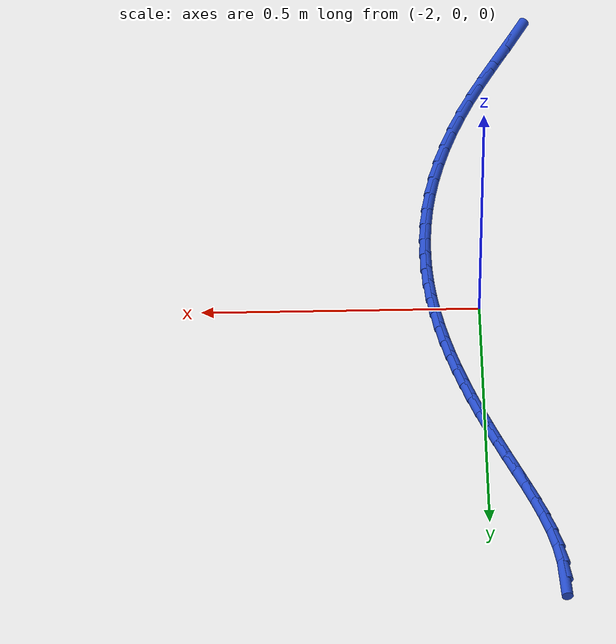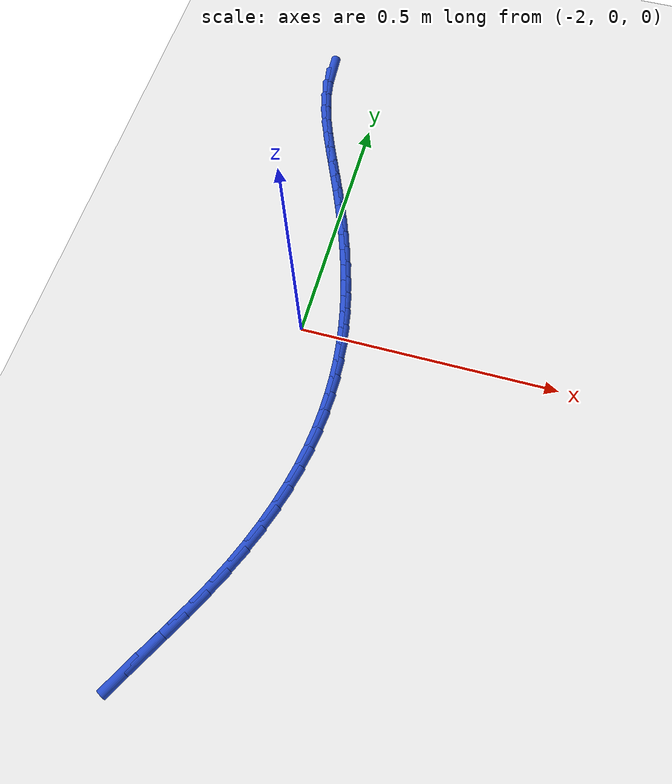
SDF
<sdf version="1.6">
 <world name="default">
  <model name="ground_plane">
   <static>1</static>
   <link name="link">
    <collision name="collision">
     <geometry><plane><normal>0 0 1</normal><size>100 100</size></plane></geometry>
     <surface><friction><ode><mu>100</mu><mu2>50</mu2></ode></friction></surface>
    </collision>
    <visual name="visual">
     <cast_shadows>0</cast_shadows>
     <geometry><plane><normal>0 0 1</normal><size>100 100</size></plane></geometry>
     <material>
      <script><uri>file://media/materials/scripts/gazebo.material</uri><name>Gazebo/WhiteGlow</name></script>
     </material>
    </visual>
   </link>
  </model>
  <model name="line">
   <link name="link_89">
    <pose>-2.12395162584496 0.6381175302411104 0.01 0 1.57 -1.5034631519216013</pose>
    <collision name="collision">
     <geometry><cylinder><radius>0.01</radius><length>0.08</length></cylinder></geometry>
    </collision>
    <visual name="visual">
     <material>
      <script><name>Gazebo/Blue</name><uri>file://media/materials/scripts/gazebo.material</uri></script>
     </material>
     <geometry><cylinder><radius>0.01</radius><length>0.08</length></cylinder></geometry>
    </visual>
   </link>
   <link name="link_90">
    <pose>-2.121588429755306 0.6030735325533041 0.01 0 1.57 -1.399343400542922</pose>
    <collision name="collision">
     <geometry><cylinder><radius>0.01</radius><length>0.08</length></cylinder></geometry>
    </collision>
    <visual name="visual">
     <material>
      <script><name>Gazebo/Blue</name><uri>file://media/materials/scripts/gazebo.material</uri></script>
     </material>
     <geometry><cylinder><radius>0.01</radius><length>0.08</length></cylinder></geometry>
    </visual>
   </link>
   <link name="link_91">
    <pose>-2.1155185097320017 0.5680182790213089 0.01 0 1.57 -1.3149138429564826</pose>
    <collision name="collision">
     <geometry><cylinder><radius>0.01</radius><length>0.08</length></cylinder></geometry>
    </collision>
    <visual name="visual">
     <material>
      <script><name>Gazebo/Blue</name><uri>file://media/materials/scripts/gazebo.material</uri></script>
     </material>
     <geometry><cylinder><radius>0.01</radius><length>0.08</length></cylinder></geometry>
    </visual>
   </link>
   <link name="link_92">
    <pose>-2.106352872381465 0.5329837744342042 0.01 0 1.57 -1.249309132578316</pose>
    <collision name="collision">
     <geometry><cylinder><radius>0.01</radius><length>0.08</length></cylinder></geometry>
    </collision>
    <visual name="visual">
     <material>
      <script><name>Gazebo/Blue</name><uri>file://media/materials/scripts/gazebo.material</uri></script>
     </material>
     <geometry><cylinder><radius>0.01</radius><length>0.08</length></cylinder></geometry>
    </visual>
   </link>
   <link name="link_93">
    <pose>-2.094702524310115 0.49800202358106804 0.01 0 1.57 -1.2010754723055455</pose>
    <collision name="collision">
     <geometry><cylinder><radius>0.01</radius><length>0.08</length></cylinder></geometry>
    </collision>
    <visual name="visual">
     <material>
      <script><name>Gazebo/Blue</name><uri>file://media/materials/scripts/gazebo.material</uri></script>
     </material>
     <geometry><cylinder><radius>0.01</radius><length>0.08</length></cylinder></geometry>
    </visual>
   </link>
   <link name="link_94">
    <pose>-2.0811784721243733 0.46310503125098035 0.01 0 1.57 -1.168800209695618</pose>
    <collision name="collision">
     <geometry><cylinder><radius>0.01</radius><length>0.08</length></cylinder></geometry>
    </collision>
    <visual name="visual">
     <material>
      <script><name>Gazebo/Blue</name><uri>file://media/materials/scripts/gazebo.material</uri></script>
     </material>
     <geometry><cylinder><radius>0.01</radius><length>0.08</length></cylinder></geometry>
    </visual>
   </link>
   <link name="link_95">
    <pose>-2.0663917224306574 0.42832480223301883 0.01 0 1.57 -1.1514469838567807</pose>
    <collision name="collision">
     <geometry><cylinder><radius>0.01</radius><length>0.08</length></cylinder></geometry>
    </collision>
    <visual name="visual">
     <material>
      <script><name>Gazebo/Blue</name><uri>file://media/materials/scripts/gazebo.material</uri></script>
     </material>
     <geometry><cylinder><radius>0.01</radius><length>0.08</length></cylinder></geometry>
    </visual>
   </link>
   <link name="link_96">
    <pose>-2.0509532818353877 0.39369334131626343 0.01 0 1.57 -1.1485050526131664</pose>
    <collision name="collision">
     <geometry><cylinder><radius>0.01</radius><length>0.08</length></cylinder></geometry>
    </collision>
    <visual name="visual">
     <material>
      <script><name>Gazebo/Blue</name><uri>file://media/materials/scripts/gazebo.material</uri></script>
     </material>
     <geometry><cylinder><radius>0.01</radius><length>0.08</length></cylinder></geometry>
    </visual>
   </link>
   <link name="link_97">
    <pose>-2.035473748796037 0.35924259434498607 0.01 0 1.57 -1.1569122805504914</pose>
    <collision name="collision">
     <geometry><cylinder><radius>0.01</radius><length>0.08</length></cylinder></geometry>
    </collision>
    <visual name="visual">
     <material>
      <script><name>Gazebo/Blue</name><uri>file://media/materials/scripts/gazebo.material</uri></script>
     </material>
     <geometry><cylinder><radius>0.01</radius><length>0.08</length></cylinder></geometry>
    </visual>
   </link>
   <link name="link_98">
    <pose>-2.0204256792742665 0.3249845710880191 0.01 0 1.57 -1.169201766372938</pose>
    <collision name="collision">
     <geometry><cylinder><radius>0.01</radius><length>0.08</length></cylinder></geometry>
    </collision>
    <visual name="visual">
     <material>
      <script><name>Gazebo/Blue</name><uri>file://media/materials/scripts/gazebo.material</uri></script>
     </material>
     <geometry><cylinder><radius>0.01</radius><length>0.08</length></cylinder></geometry>
    </visual>
   </link>
   <link name="link_99">
    <pose>-2.005943384665935 0.2908824320874324 0.01 0 1.57 -1.1842964422747582</pose>
    <collision name="collision">
     <geometry><cylinder><radius>0.01</radius><length>0.08</length></cylinder></geometry>
    </collision>
    <visual name="visual">
     <material>
      <script><name>Gazebo/Blue</name><uri>file://media/materials/scripts/gazebo.material</uri></script>
     </material>
     <geometry><cylinder><radius>0.01</radius><length>0.08</length></cylinder></geometry>
    </visual>
   </link>
   <link name="link_100">
    <pose>-1.9921103209625342 0.25689199335582885 0.01 0 1.57 -1.202259638124991</pose>
    <collision name="collision">
     <geometry><cylinder><radius>0.01</radius><length>0.08</length></cylinder></geometry>
    </collision>
    <visual name="visual">
     <material>
      <script><name>Gazebo/Blue</name><uri>file://media/materials/scripts/gazebo.material</uri></script>
     </material>
     <geometry><cylinder><radius>0.01</radius><length>0.08</length></cylinder></geometry>
    </visual>
   </link>
   <link name="link_101">
    <pose>-1.9790099441555586 0.22296907090581286 0.01 0 1.57 -1.2231432167341818</pose>
    <collision name="collision">
     <geometry><cylinder><radius>0.01</radius><length>0.08</length></cylinder></geometry>
    </collision>
    <visual name="visual">
     <material>
      <script><name>Gazebo/Blue</name><uri>file://media/materials/scripts/gazebo.material</uri></script>
     </material>
     <geometry><cylinder><radius>0.01</radius><length>0.08</length></cylinder></geometry>
    </visual>
   </link>
   <link name="link_102">
    <pose>-1.9667257102365028 0.18906948074998786 0.01 0 1.57 -1.2469823939323856</pose>
    <collision name="collision">
     <geometry><cylinder><radius>0.01</radius><length>0.08</length></cylinder></geometry>
    </collision>
    <visual name="visual">
     <material>
      <script><name>Gazebo/Blue</name><uri>file://media/materials/scripts/gazebo.material</uri></script>
     </material>
     <geometry><cylinder><radius>0.01</radius><length>0.08</length></cylinder></geometry>
    </visual>
   </link>
   <link name="link_103">
    <pose>-1.9553410751968594 0.1551490389009582 0.01 0 1.57 -1.27378961952184</pose>
    <collision name="collision">
     <geometry><cylinder><radius>0.01</radius><length>0.08</length></cylinder></geometry>
    </collision>
    <visual name="visual">
     <material>
      <script><name>Gazebo/Blue</name><uri>file://media/materials/scripts/gazebo.material</uri></script>
     </material>
     <geometry><cylinder><radius>0.01</radius><length>0.08</length></cylinder></geometry>
    </visual>
   </link>
   <link name="link_104">
    <pose>-1.944939495028122 0.12116356137132707 0.01 0 1.57 -1.3035476922176128</pose>
    <collision name="collision">
     <geometry><cylinder><radius>0.01</radius><length>0.08</length></cylinder></geometry>
    </collision>
    <visual name="visual">
     <material>
      <script><name>Gazebo/Blue</name><uri>file://media/materials/scripts/gazebo.material</uri></script>
     </material>
     <geometry><cylinder><radius>0.01</radius><length>0.08</length></cylinder></geometry>
    </visual>
   </link>
   <link name="link_105">
    <pose>-1.9356044257217846 0.08706886417369902 0.01 0 1.57 -1.336202446321169</pose>
    <collision name="collision">
     <geometry><cylinder><radius>0.01</radius><length>0.08</length></cylinder></geometry>
    </collision>
    <visual name="visual">
     <material>
      <script><name>Gazebo/Blue</name><uri>file://media/materials/scripts/gazebo.material</uri></script>
     </material>
     <geometry><cylinder><radius>0.01</radius><length>0.08</length></cylinder></geometry>
    </visual>
   </link>
   <link name="link_106">
    <pose>-1.9274193232693415 0.052820763320677144 0.01 0 1.57 -1.3716555442141474</pose>
    <collision name="collision">
     <geometry><cylinder><radius>0.01</radius><length>0.08</length></cylinder></geometry>
    </collision>
    <visual name="visual">
     <material>
      <script><name>Gazebo/Blue</name><uri>file://media/materials/scripts/gazebo.material</uri></script>
     </material>
     <geometry><cylinder><radius>0.01</radius><length>0.08</length></cylinder></geometry>
    </visual>
   </link>
   <link name="link_107">
    <pose>-1.9204676436622856 0.018375074824866024 0.01 0 1.57 -1.4097581113877269</pose>
    <collision name="collision">
     <geometry><cylinder><radius>0.01</radius><length>0.08</length></cylinder></geometry>
    </collision>
    <visual name="visual">
     <material>
      <script><name>Gazebo/Blue</name><uri>file://media/materials/scripts/gazebo.material</uri></script>
     </material>
     <geometry><cylinder><radius>0.01</radius><length>0.08</length></cylinder></geometry>
    </visual>
   </link>
   <link name="link_108">
    <pose>-1.9148328428921106 -0.01631238530113128 0.01 0 1.57 -1.450306115779859</pose>
    <collision name="collision">
     <geometry><cylinder><radius>0.01</radius><length>0.08</length></cylinder></geometry>
    </collision>
    <visual name="visual">
     <material>
      <script><name>Gazebo/Blue</name><uri>file://media/materials/scripts/gazebo.material</uri></script>
     </material>
     <geometry><cylinder><radius>0.01</radius><length>0.08</length></cylinder></geometry>
    </visual>
   </link>
   <link name="link_109">
    <pose>-1.9105983769503108 -0.05128580104471016 0.01 0 1.57 -1.4930384616225019</pose>
    <collision name="collision">
     <geometry><cylinder><radius>0.01</radius><length>0.08</length></cylinder></geometry>
    </collision>
    <visual name="visual">
     <material>
      <script><name>Gazebo/Blue</name><uri>file://media/materials/scripts/gazebo.material</uri></script>
     </material>
     <geometry><cylinder><radius>0.01</radius><length>0.08</length></cylinder></geometry>
    </visual>
   </link>
   <link name="link_110">
    <pose>-1.9078477018283786 -0.08658935639326748 0.01 0 1.57 -1.5376386779895188</pose>
    <collision name="collision">
     <geometry><cylinder><radius>0.01</radius><length>0.08</length></cylinder></geometry>
    </collision>
    <visual name="visual">
     <material>
      <script><name>Gazebo/Blue</name><uri>file://media/materials/scripts/gazebo.material</uri></script>
     </material>
     <geometry><cylinder><radius>0.01</radius><length>0.08</length></cylinder></geometry>
    </visual>
   </link>
   <link name="link_111">
    <pose>-1.906664273517809 -0.12226723533419874 0.01 0 1.57 1.5578518623117363</pose>
    <collision name="collision">
     <geometry><cylinder><radius>0.01</radius><length>0.08</length></cylinder></geometry>
    </collision>
    <visual name="visual">
     <material>
      <script><name>Gazebo/Blue</name><uri>file://media/materials/scripts/gazebo.material</uri></script>
     </material>
     <geometry><cylinder><radius>0.01</radius><length>0.08</length></cylinder></geometry>
    </visual>
   </link>
   <link name="link_112">
    <pose>-1.9071315480100954 -0.15836362185490044 0.01 0 1.57 1.5106531716474252</pose>
    <collision name="collision">
     <geometry><cylinder><radius>0.01</radius><length>0.08</length></cylinder></geometry>
    </collision>
    <visual name="visual">
     <material>
      <script><name>Gazebo/Blue</name><uri>file://media/materials/scripts/gazebo.material</uri></script>
     </material>
     <geometry><cylinder><radius>0.01</radius><length>0.08</length></cylinder></geometry>
    </visual>
   </link>
   <link name="link_113">
    <pose>-1.909332981296731 -0.19492269994276873 0.01 0 1.57 1.462788647774268</pose>
    <collision name="collision">
     <geometry><cylinder><radius>0.01</radius><length>0.08</length></cylinder></geometry>
    </collision>
    <visual name="visual">
     <material>
      <script><name>Gazebo/Blue</name><uri>file://media/materials/scripts/gazebo.material</uri></script>
     </material>
     <geometry><cylinder><radius>0.01</radius><length>0.08</length></cylinder></geometry>
    </visual>
   </link>
   <link name="link_114">
    <pose>-1.9133520293692095 -0.2319886535852007 0.01 0 1.57 1.414697916882939</pose>
    <collision name="collision">
     <geometry><cylinder><radius>0.01</radius><length>0.08</length></cylinder></geometry>
    </collision>
    <visual name="visual">
     <material>
      <script><name>Gazebo/Blue</name><uri>file://media/materials/scripts/gazebo.material</uri></script>
     </material>
     <geometry><cylinder><radius>0.01</radius><length>0.08</length></cylinder></geometry>
    </visual>
   </link>
   <link name="link_115">
    <pose>-1.9192721482190254 -0.26960566676959075 0.01 0 1.57 1.3668119383256339</pose>
    <collision name="collision">
     <geometry><cylinder><radius>0.01</radius><length>0.08</length></cylinder></geometry>
    </collision>
    <visual name="visual">
     <material>
      <script><name>Gazebo/Blue</name><uri>file://media/materials/scripts/gazebo.material</uri></script>
     </material>
     <geometry><cylinder><radius>0.01</radius><length>0.08</length></cylinder></geometry>
    </visual>
   </link>
   <link name="link_116">
    <pose>-1.9271767938376716 -0.3078179234833359 0.01 0 1.57 1.3195362535251487</pose>
    <collision name="collision">
     <geometry><cylinder><radius>0.01</radius><length>0.08</length></cylinder></geometry>
    </collision>
    <visual name="visual">
     <material>
      <script><name>Gazebo/Blue</name><uri>file://media/materials/scripts/gazebo.material</uri></script>
     </material>
     <geometry><cylinder><radius>0.01</radius><length>0.08</length></cylinder></geometry>
    </visual>
   </link>
   <link name="link_117">
    <pose>-1.9371494222166414 -0.3466696077138322 0.01 0 1.57 1.2732366880885895</pose>
    <collision name="collision">
     <geometry><cylinder><radius>0.01</radius><length>0.08</length></cylinder></geometry>
    </collision>
    <visual name="visual">
     <material>
      <script><name>Gazebo/Blue</name><uri>file://media/materials/scripts/gazebo.material</uri></script>
     </material>
     <geometry><cylinder><radius>0.01</radius><length>0.08</length></cylinder></geometry>
    </visual>
   </link>
   <link name="link_118">
    <pose>-1.94927348934743 -0.386204903448477 0.01 0 1.57 1.2282287197703519</pose>
    <collision name="collision">
     <geometry><cylinder><radius>0.01</radius><length>0.08</length></cylinder></geometry>
    </collision>
    <visual name="visual">
     <material>
      <script><name>Gazebo/Blue</name><uri>file://media/materials/scripts/gazebo.material</uri></script>
     </material>
     <geometry><cylinder><radius>0.01</radius><length>0.08</length></cylinder></geometry>
    </visual>
   </link>
   <link name="link_119">
    <pose>-1.9636324512215295 -0.42646799467466445 0.01 0 1.57 1.1847711118568873</pose>
    <collision name="collision">
     <geometry><cylinder><radius>0.01</radius><length>0.08</length></cylinder></geometry>
    </collision>
    <visual name="visual">
     <material>
      <script><name>Gazebo/Blue</name><uri>file://media/materials/scripts/gazebo.material</uri></script>
     </material>
     <geometry><cylinder><radius>0.01</radius><length>0.08</length></cylinder></geometry>
    </visual>
   </link>
   <link name="link_120">
    <pose>-1.9803097638304341 -0.46750306537979175 0.01 0 1.57 1.143063783836606</pose>
    <collision name="collision">
     <geometry><cylinder><radius>0.01</radius><length>0.08</length></cylinder></geometry>
    </collision>
    <visual name="visual">
     <material>
      <script><name>Gazebo/Blue</name><uri>file://media/materials/scripts/gazebo.material</uri></script>
     </material>
     <geometry><cylinder><radius>0.01</radius><length>0.08</length></cylinder></geometry>
    </visual>
   </link>
   <link name="link_121">
    <pose>-1.9993888831656383 -0.509354299551255 0.01 0 1.57 1.1046877189272692</pose>
    <collision name="collision">
     <geometry><cylinder><radius>0.01</radius><length>0.08</length></cylinder></geometry>
    </collision>
    <visual name="visual">
     <material>
      <script><name>Gazebo/Blue</name><uri>file://media/materials/scripts/gazebo.material</uri></script>
     </material>
     <geometry><cylinder><radius>0.01</radius><length>0.08</length></cylinder></geometry>
    </visual>
   </link>
   <link name="link_122">
    <pose>-2.020842623250112 -0.5519990840272823 0.01 0 1.57 1.0781007103344016</pose>
    <collision name="collision">
     <geometry><cylinder><radius>0.01</radius><length>0.08</length></cylinder></geometry>
    </collision>
    <visual name="visual">
     <material>
      <script><name>Gazebo/Blue</name><uri>file://media/materials/scripts/gazebo.material</uri></script>
     </material>
     <geometry><cylinder><radius>0.01</radius><length>0.08</length></cylinder></geometry>
    </visual>
   </link>
   <link name="link_123">
    <pose>-2.043914093060612 -0.5949742656098727 0.01 0 1.57 1.0648708794469457</pose>
    <collision name="collision">
     <geometry><cylinder><radius>0.01</radius><length>0.08</length></cylinder></geometry>
    </collision>
    <visual name="visual">
     <material>
      <script><name>Gazebo/Blue</name><uri>file://media/materials/scripts/gazebo.material</uri></script>
     </material>
     <geometry><cylinder><radius>0.01</radius><length>0.08</length></cylinder></geometry>
    </visual>
   </link>
   <link name="link_124">
    <pose>-2.0675508659611865 -0.6376382693260851 0.01 0 1.57 1.0641343987645715</pose>
    <collision name="collision">
     <geometry><cylinder><radius>0.01</radius><length>0.08</length></cylinder></geometry>
    </collision>
    <visual name="visual">
     <material>
      <script><name>Gazebo/Blue</name><uri>file://media/materials/scripts/gazebo.material</uri></script>
     </material>
     <geometry><cylinder><radius>0.01</radius><length>0.08</length></cylinder></geometry>
    </visual>
   </link>
   <link name="link_125">
    <pose>-2.0906996776718096 -0.6793490144976236 0.01 0 1.57 1.0767200206301335</pose>
    <collision name="collision">
     <geometry><cylinder><radius>0.01</radius><length>0.08</length></cylinder></geometry>
    </collision>
    <visual name="visual">
     <material>
      <script><name>Gazebo/Blue</name><uri>file://media/materials/scripts/gazebo.material</uri></script>
     </material>
     <geometry><cylinder><radius>0.01</radius><length>0.08</length></cylinder></geometry>
    </visual>
   </link>
  </model>
 </world>
</sdf>
